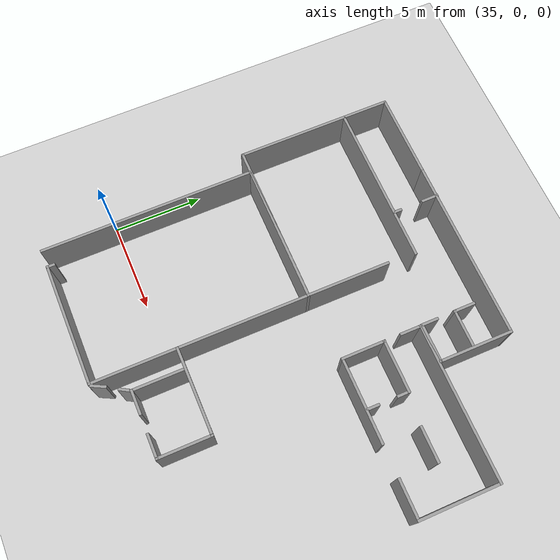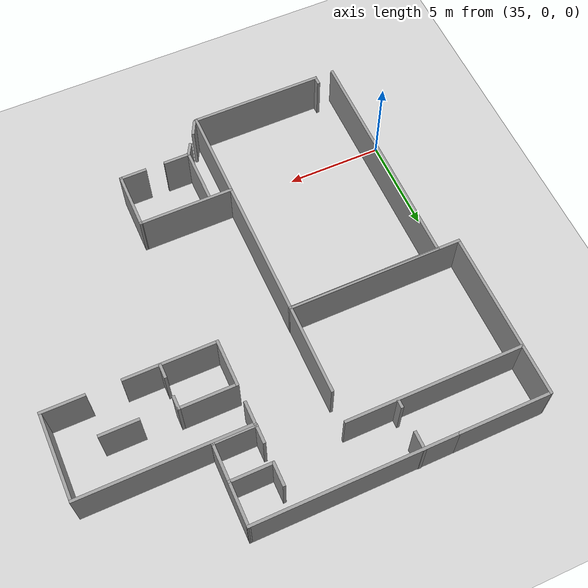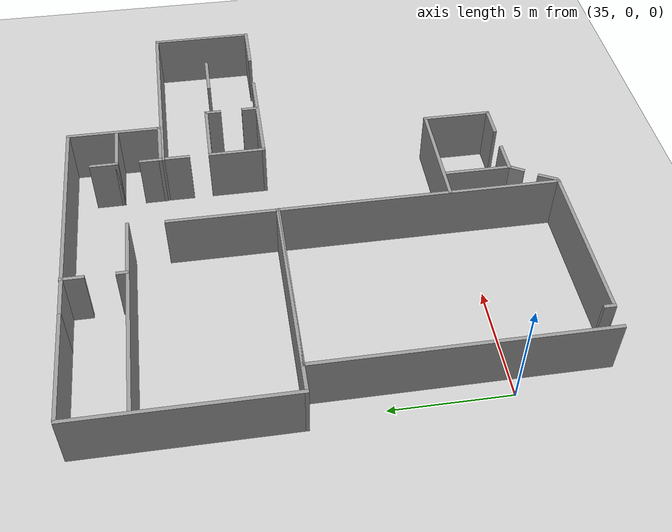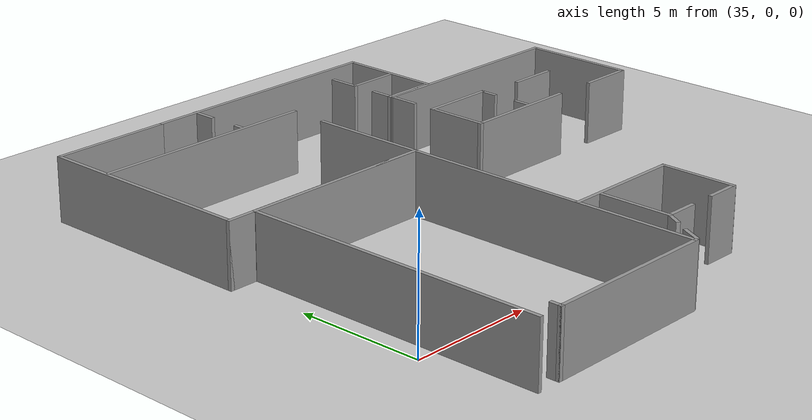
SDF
<sdf version="1.6">
 <world name="default">
  <model name="ground_plane">
   <static>1</static>
   <link name="link">
    <collision name="collision">
     <geometry><plane><normal>0 0 1</normal><size>100 100</size></plane></geometry>
     <surface><friction><ode><mu>100</mu><mu2>50</mu2></ode></friction></surface>
    </collision>
    <visual name="visual">
     <cast_shadows>0</cast_shadows>
     <geometry><plane><normal>0 0 1</normal><size>100 100</size></plane></geometry>
     <material>
      <script><uri>file://media/materials/scripts/gazebo.material</uri><name>Gazebo/Grey</name></script>
     </material>
    </visual>
   </link>
  </model>
  <model name="classrooms_2">
   <pose>39.734 1.98873 0 0 -0 0</pose>
   <link name="Wall_39">
    <collision name="Wall_39_Collision">
     <geometry><box><size>12.192 0.15 2.5</size></box></geometry>
     <pose>0 0 1.25 0 -0 0</pose>
    </collision>
    <visual name="Wall_39_Visual">
     <pose>0 0 1.25 0 -0 0</pose>
     <geometry><box><size>12.192 0.15 2.5</size></box></geometry>
     <material>
      <script><uri>file://media/materials/scripts/gazebo.material</uri><name>Gazebo/Grey</name></script>
      <ambient>1 1 1 1</ambient>
     </material>
     <meta><layer>0</layer></meta>
    </visual>
    <pose>3.92486 -0.000205 0 0 -0 1.5708</pose>
   </link>
   <link name="Wall_40">
    <collision name="Wall_40_Collision">
     <geometry><box><size>7.99972 0.15 2.5</size></box></geometry>
     <pose>0 0 1.25 0 -0 0</pose>
    </collision>
    <visual name="Wall_40_Visual">
     <pose>0 0 1.25 0 -0 0</pose>
     <geometry><box><size>7.99972 0.15 2.5</size></box></geometry>
     <material>
      <script><uri>file://media/materials/scripts/gazebo.material</uri><name>Gazebo/Grey</name></script>
      <ambient>1 1 1 1</ambient>
     </material>
     <meta><layer>0</layer></meta>
    </visual>
    <pose>0 6.02093 0 0 -0 3.14156</pose>
   </link>
   <link name="Wall_41">
    <collision name="Wall_41_Collision">
     <geometry><box><size>12.1923 0.15 2.5</size></box></geometry>
     <pose>0 0 1.25 0 -0 0</pose>
    </collision>
    <visual name="Wall_41_Visual">
     <pose>0 0 1.25 0 -0 0</pose>
     <geometry><box><size>12.1923 0.15 2.5</size></box></geometry>
     <material>
      <script><uri>file://media/materials/scripts/gazebo.material</uri><name>Gazebo/Grey</name></script>
      <ambient>1 1 1 1</ambient>
     </material>
     <meta><layer>0</layer></meta>
    </visual>
    <pose>-3.92486 6.8e-05 0 0 -0 -1.5708</pose>
   </link>
   <link name="Wall_43">
    <collision name="Wall_43_Collision">
     <geometry><box><size>7 0.15 2.5</size></box></geometry>
     <pose>0 0 1.25 0 -0 0</pose>
    </collision>
    <visual name="Wall_43_Visual">
     <pose>0 0 1.25 0 -0 0</pose>
     <geometry><box><size>7 0.15 2.5</size></box></geometry>
     <material>
      <script><uri>file://media/materials/scripts/gazebo.material</uri><name>Gazebo/Grey</name></script>
      <ambient>1 1 1 1</ambient>
     </material>
     <meta><layer>0</layer></meta>
    </visual>
    <pose>0.49986 -6.02121 0 0 -0 3.14159</pose>
   </link>
   <link name="Wall_44">
    <collision name="Wall_44_Collision">
     <geometry><box><size>0.5 0.15 2.5</size></box></geometry>
     <pose>0 0 1.25 0 -0 0</pose>
    </collision>
    <visual name="Wall_44_Visual">
     <pose>0 0 1.25 0 -0 0</pose>
     <geometry><box><size>0.5 0.15 2.5</size></box></geometry>
     <material>
      <script><uri>file://media/materials/scripts/gazebo.material</uri><name>Gazebo/Grey</name></script>
      <ambient>1 1 1 1</ambient>
     </material>
     <meta><layer>0</layer></meta>
    </visual>
    <pose>-2.92514 -5.84621 0 0 -0 1.5708</pose>
   </link>
   <static>1</static>
  </model>
  <model name="214">
   <link name="Wall_121">
    <pose>0 2.34949 0 0 -0 0</pose>
    <visual name="Wall_121_Visual">
     <pose>0 0 1.25 0 -0 0</pose>
     <geometry><box><size>4.953 0.15 2.5</size></box></geometry>
     <material>
      <script><uri>file://media/materials/scripts/gazebo.material</uri><name>Gazebo/Grey</name></script>
      <ambient>1 1 1 1</ambient>
      <shader type="pixel"/>
     </material>
     <meta><layer>0</layer></meta>
    </visual>
    <collision name="Wall_121_Collision">
     <pose>0 0 1.25 0 -0 0</pose>
     <geometry><box><size>4.953 0.15 2.5</size></box></geometry>
     <surface>
      <friction>
       <ode><mu>1</mu><mu2>1</mu2><fdir1>0 0 0</fdir1><slip1>0</slip1><slip2>0</slip2></ode>
       <torsional>
        <coefficient>1</coefficient>
        <patch_radius>0</patch_radius>
        <surface_radius>0</surface_radius>
        <use_patch_radius>1</use_patch_radius>
        <ode><slip>0</slip></ode>
       </torsional>
      </friction>
      <bounce><restitution_coefficient>0</restitution_coefficient><threshold>1e+06</threshold></bounce>
      <contact>
       <collide_without_contact>0</collide_without_contact>
       <collide_without_contact_bitmask>1</collide_without_contact_bitmask>
       <collide_bitmask>1</collide_bitmask>
       <ode>
        <soft_cfm>0</soft_cfm>
        <soft_erp>0.2</soft_erp>
        <kp>1e+13</kp>
        <kd>1</kd>
        <max_vel>0.01</max_vel>
        <min_depth>0</min_depth>
       </ode>
       <bullet>
        <split_impulse>1</split_impulse>
        <split_impulse_penetration_threshold>-0.01</split_impulse_penetration_threshold>
        <soft_cfm>0</soft_cfm>
        <soft_erp>0.2</soft_erp>
        <kp>1e+13</kp>
        <kd>1</kd>
       </bullet>
      </contact>
     </surface>
    </collision>
   </link>
   <link name="Wall_122">
    <pose>2.4015 0.900489 0 0 0 -1.5708</pose>
    <visual name="Wall_122_Visual">
     <pose>0 0 1.25 0 -0 0</pose>
     <geometry><box><size>3.048 0.15 2.5</size></box></geometry>
     <material>
      <script><uri>file://media/materials/scripts/gazebo.material</uri><name>Gazebo/Grey</name></script>
      <ambient>1 1 1 1</ambient>
      <shader type="pixel"/>
     </material>
     <meta><layer>0</layer></meta>
    </visual>
    <collision name="Wall_122_Collision">
     <pose>0 0 1.25 0 -0 0</pose>
     <geometry><box><size>3.048 0.15 2.5</size></box></geometry>
     <surface>
      <friction>
       <ode><mu>1</mu><mu2>1</mu2><fdir1>0 0 0</fdir1><slip1>0</slip1><slip2>0</slip2></ode>
       <torsional>
        <coefficient>1</coefficient>
        <patch_radius>0</patch_radius>
        <surface_radius>0</surface_radius>
        <use_patch_radius>1</use_patch_radius>
        <ode><slip>0</slip></ode>
       </torsional>
      </friction>
      <bounce><restitution_coefficient>0</restitution_coefficient><threshold>1e+06</threshold></bounce>
      <contact>
       <collide_without_contact>0</collide_without_contact>
       <collide_without_contact_bitmask>1</collide_without_contact_bitmask>
       <collide_bitmask>1</collide_bitmask>
       <ode>
        <soft_cfm>0</soft_cfm>
        <soft_erp>0.2</soft_erp>
        <kp>1e+13</kp>
        <kd>1</kd>
        <max_vel>0.01</max_vel>
        <min_depth>0</min_depth>
       </ode>
       <bullet>
        <split_impulse>1</split_impulse>
        <split_impulse_penetration_threshold>-0.01</split_impulse_penetration_threshold>
        <soft_cfm>0</soft_cfm>
        <soft_erp>0.2</soft_erp>
        <kp>1e+13</kp>
        <kd>1</kd>
       </bullet>
      </contact>
     </surface>
    </collision>
   </link>
   <link name="Wall_123">
    <pose>1.75797 -0.548528 0 0 0 -3.14158</pose>
    <inertial>
     <inertia><ixx>0</ixx><ixy>0</ixy><ixz>0</ixz><iyy>0</iyy><iyz>0</iyz><izz>0</izz></inertia>
     <mass>0</mass>
    </inertial>
    <visual name="Wall_123_Visual">
     <pose>0 0 1.25 0 -0 0</pose>
     <geometry><box><size>1.41659 0.15 2.5</size></box></geometry>
     <material>
      <script><uri>file://media/materials/scripts/gazebo.material</uri><name>Gazebo/Grey</name></script>
      <ambient>1 1 1 1</ambient>
      <shader type="pixel"/>
     </material>
     <meta><layer>0</layer></meta>
    </visual>
    <collision name="Wall_123_Collision">
     <pose>0 0 1.25 0 -0 0</pose>
     <geometry><box><size>1.41659 0.15 2.5</size></box></geometry>
     <surface>
      <friction>
       <ode><mu>1</mu><mu2>1</mu2><fdir1>0 0 0</fdir1><slip1>0</slip1><slip2>0</slip2></ode>
       <torsional>
        <coefficient>1</coefficient>
        <patch_radius>0</patch_radius>
        <surface_radius>0</surface_radius>
        <use_patch_radius>1</use_patch_radius>
        <ode><slip>0</slip></ode>
       </torsional>
      </friction>
      <bounce><restitution_coefficient>0</restitution_coefficient><threshold>1e+06</threshold></bounce>
      <contact>
       <collide_without_contact>0</collide_without_contact>
       <collide_without_contact_bitmask>1</collide_without_contact_bitmask>
       <collide_bitmask>1</collide_bitmask>
       <ode>
        <soft_cfm>0</soft_cfm>
        <soft_erp>0.2</soft_erp>
        <kp>1e+13</kp>
        <kd>1</kd>
        <max_vel>0.01</max_vel>
        <min_depth>0</min_depth>
       </ode>
       <bullet>
        <split_impulse>1</split_impulse>
        <split_impulse_penetration_threshold>-0.01</split_impulse_penetration_threshold>
        <soft_cfm>0</soft_cfm>
        <soft_erp>0.2</soft_erp>
        <kp>1e+13</kp>
        <kd>1</kd>
       </bullet>
      </contact>
     </surface>
    </collision>
   </link>
   <link name="Wall_123_clone">
    <pose>-0.622276 -0.540195 0 0 0 -3.14158</pose>
    <inertial>
     <inertia><ixx>0</ixx><ixy>0</ixy><ixz>0</ixz><iyy>0</iyy><iyz>0</iyz><izz>0</izz></inertia>
     <mass>0</mass>
    </inertial>
    <visual name="Wall_123_Visual">
     <pose>0 0 1.25 0 -0 0</pose>
     <geometry><box><size>1.41659 0.15 2.5</size></box></geometry>
     <material>
      <script><uri>file://media/materials/scripts/gazebo.material</uri><name>Gazebo/Grey</name></script>
      <ambient>1 1 1 1</ambient>
      <shader type="pixel"/>
     </material>
     <meta><layer>0</layer></meta>
    </visual>
    <collision name="Wall_123_Collision">
     <pose>0 0 1.25 0 -0 0</pose>
     <geometry><box><size>1.41659 0.15 2.5</size></box></geometry>
     <surface>
      <friction>
       <ode><mu>1</mu><mu2>1</mu2><fdir1>0 0 0</fdir1><slip1>0</slip1><slip2>0</slip2></ode>
       <torsional>
        <coefficient>1</coefficient>
        <patch_radius>0</patch_radius>
        <surface_radius>0</surface_radius>
        <use_patch_radius>1</use_patch_radius>
        <ode><slip>0</slip></ode>
       </torsional>
      </friction>
      <bounce><restitution_coefficient>0</restitution_coefficient><threshold>1e+06</threshold></bounce>
      <contact>
       <collide_without_contact>0</collide_without_contact>
       <collide_without_contact_bitmask>1</collide_without_contact_bitmask>
       <collide_bitmask>1</collide_bitmask>
       <ode>
        <soft_cfm>0</soft_cfm>
        <soft_erp>0.2</soft_erp>
        <kp>1e+13</kp>
        <kd>1</kd>
        <max_vel>0.01</max_vel>
        <min_depth>0</min_depth>
       </ode>
       <bullet>
        <split_impulse>1</split_impulse>
        <split_impulse_penetration_threshold>-0.01</split_impulse_penetration_threshold>
        <soft_cfm>0</soft_cfm>
        <soft_erp>0.2</soft_erp>
        <kp>1e+13</kp>
        <kd>1</kd>
       </bullet>
      </contact>
     </surface>
    </collision>
   </link>
   <link name="Wall_128">
    <pose>-1.40869 -0.808383 0 0 0 -2.0944</pose>
    <visual name="Wall_128_Visual">
     <pose>0 0 1.25 0 -0 0</pose>
     <geometry><box><size>0.75 0.15 2.5</size></box></geometry>
     <material>
      <script><uri>file://media/materials/scripts/gazebo.material</uri><name>Gazebo/Grey</name></script>
      <ambient>1 1 1 1</ambient>
      <shader type="pixel"/>
     </material>
     <meta><layer>0</layer></meta>
    </visual>
    <collision name="Wall_128_Collision">
     <pose>0 0 1.25 0 -0 0</pose>
     <geometry><box><size>0.75 0.15 2.5</size></box></geometry>
     <surface>
      <friction>
       <ode><mu>1</mu><mu2>1</mu2><fdir1>0 0 0</fdir1><slip1>0</slip1><slip2>0</slip2></ode>
       <torsional>
        <coefficient>1</coefficient>
        <patch_radius>0</patch_radius>
        <surface_radius>0</surface_radius>
        <use_patch_radius>1</use_patch_radius>
        <ode><slip>0</slip></ode>
       </torsional>
      </friction>
      <bounce><restitution_coefficient>0</restitution_coefficient><threshold>1e+06</threshold></bounce>
      <contact>
       <collide_without_contact>0</collide_without_contact>
       <collide_without_contact_bitmask>1</collide_without_contact_bitmask>
       <collide_bitmask>1</collide_bitmask>
       <ode>
        <soft_cfm>0</soft_cfm>
        <soft_erp>0.2</soft_erp>
        <kp>1e+13</kp>
        <kd>1</kd>
        <max_vel>0.01</max_vel>
        <min_depth>0</min_depth>
       </ode>
       <bullet>
        <split_impulse>1</split_impulse>
        <split_impulse_penetration_threshold>-0.01</split_impulse_penetration_threshold>
        <soft_cfm>0</soft_cfm>
        <soft_erp>0.2</soft_erp>
        <kp>1e+13</kp>
        <kd>1</kd>
       </bullet>
      </contact>
     </surface>
    </collision>
   </link>
   <link name="Wall_130">
    <pose>-2.12119 -2.00558 0 0 0 -2.04321</pose>
    <visual name="Wall_130_Visual">
     <pose>0 0 1.25 0 -0 0</pose>
     <geometry><box><size>0.864228 0.15 2.5</size></box></geometry>
     <material>
      <script><uri>file://media/materials/scripts/gazebo.material</uri><name>Gazebo/Grey</name></script>
      <ambient>1 1 1 1</ambient>
      <shader type="pixel"/>
     </material>
     <meta><layer>0</layer></meta>
    </visual>
    <collision name="Wall_130_Collision">
     <pose>0 0 1.25 0 -0 0</pose>
     <geometry><box><size>0.864228 0.15 2.5</size></box></geometry>
     <surface>
      <friction>
       <ode><mu>1</mu><mu2>1</mu2><fdir1>0 0 0</fdir1><slip1>0</slip1><slip2>0</slip2></ode>
       <torsional>
        <coefficient>1</coefficient>
        <patch_radius>0</patch_radius>
        <surface_radius>0</surface_radius>
        <use_patch_radius>1</use_patch_radius>
        <ode><slip>0</slip></ode>
       </torsional>
      </friction>
      <bounce><restitution_coefficient>0</restitution_coefficient><threshold>1e+06</threshold></bounce>
      <contact>
       <collide_without_contact>0</collide_without_contact>
       <collide_without_contact_bitmask>1</collide_without_contact_bitmask>
       <collide_bitmask>1</collide_bitmask>
       <ode>
        <soft_cfm>0</soft_cfm>
        <soft_erp>0.2</soft_erp>
        <kp>1e+13</kp>
        <kd>1</kd>
        <max_vel>0.01</max_vel>
        <min_depth>0</min_depth>
       </ode>
       <bullet>
        <split_impulse>1</split_impulse>
        <split_impulse_penetration_threshold>-0.01</split_impulse_penetration_threshold>
        <soft_cfm>0</soft_cfm>
        <soft_erp>0.2</soft_erp>
        <kp>1e+13</kp>
        <kd>1</kd>
       </bullet>
      </contact>
     </surface>
    </collision>
   </link>
   <link name="Wall_132">
    <pose>-1.25869 0.876424 0 0 -0 1.5708</pose>
    <visual name="Wall_132_Visual">
     <pose>0 0 1.25 0 -0 0</pose>
     <geometry><box><size>3 0.15 2.5</size></box></geometry>
     <material>
      <script><uri>file://media/materials/scripts/gazebo.material</uri><name>Gazebo/Grey</name></script>
      <ambient>1 1 1 1</ambient>
      <shader type="pixel"/>
     </material>
     <meta><layer>0</layer></meta>
    </visual>
    <collision name="Wall_132_Collision">
     <pose>0 0 1.25 0 -0 0</pose>
     <geometry><box><size>3 0.15 2.5</size></box></geometry>
     <surface>
      <friction>
       <ode><mu>1</mu><mu2>1</mu2><fdir1>0 0 0</fdir1><slip1>0</slip1><slip2>0</slip2></ode>
       <torsional>
        <coefficient>1</coefficient>
        <patch_radius>0</patch_radius>
        <surface_radius>0</surface_radius>
        <use_patch_radius>1</use_patch_radius>
        <ode><slip>0</slip></ode>
       </torsional>
      </friction>
      <bounce><restitution_coefficient>0</restitution_coefficient><threshold>1e+06</threshold></bounce>
      <contact>
       <collide_without_contact>0</collide_without_contact>
       <collide_without_contact_bitmask>1</collide_without_contact_bitmask>
       <collide_bitmask>1</collide_bitmask>
       <ode>
        <soft_cfm>0</soft_cfm>
        <soft_erp>0.2</soft_erp>
        <kp>1e+13</kp>
        <kd>1</kd>
        <max_vel>0.01</max_vel>
        <min_depth>0</min_depth>
       </ode>
       <bullet>
        <split_impulse>1</split_impulse>
        <split_impulse_penetration_threshold>-0.01</split_impulse_penetration_threshold>
        <soft_cfm>0</soft_cfm>
        <soft_erp>0.2</soft_erp>
        <kp>1e+13</kp>
        <kd>1</kd>
       </bullet>
      </contact>
     </surface>
    </collision>
   </link>
   <static>1</static>
   <pose>46.0733 -1.64391 0 0 -0 0</pose>
  </model>
  <model name="200B">
   <pose>42.0991 12.4122 0 0 -0 0</pose>
   <link name="Wall_0">
    <collision name="Wall_0_Collision">
     <geometry><box><size>8.9 0.15 2.5</size></box></geometry>
     <pose>0 0 1.25 0 -0 0</pose>
    </collision>
    <visual name="Wall_0_Visual">
     <pose>0 0 1.25 0 -0 0</pose>
     <geometry><box><size>8.9 0.15 2.5</size></box></geometry>
     <material>
      <script><uri>file://media/materials/scripts/gazebo.material</uri><name>Gazebo/Grey</name></script>
      <ambient>1 1 1 1</ambient>
     </material>
     <meta><layer>0</layer></meta>
    </visual>
    <pose>-7.44106 -0.018099 0 0 -0 1.5708</pose>
   </link>
   <link name="Wall_11">
    <collision name="Wall_11_Collision">
     <geometry><box><size>4.75 0.15 2.5</size></box></geometry>
     <pose>0 0 1.25 0 -0 0</pose>
    </collision>
    <visual name="Wall_11_Visual">
     <pose>0 0 1.25 0 -0 0</pose>
     <geometry><box><size>4.75 0.15 2.5</size></box></geometry>
     <material>
      <script><uri>file://media/materials/scripts/gazebo.material</uri><name>Gazebo/Grey</name></script>
      <ambient>1 1 1 1</ambient>
     </material>
     <meta><layer>0</layer></meta>
    </visual>
    <pose>-5.05906 4.3699 0 0 -0 3.14159</pose>
   </link>
   <link name="Wall_13">
    <collision name="Wall_13_Collision">
     <geometry><box><size>2.25 0.15 2.5</size></box></geometry>
     <pose>0 0 1.25 0 -0 0</pose>
    </collision>
    <visual name="Wall_13_Visual">
     <pose>0 0 1.25 0 -0 0</pose>
     <geometry><box><size>2.25 0.15 2.5</size></box></geometry>
     <material>
      <script><uri>file://media/materials/scripts/gazebo.material</uri><name>Gazebo/Grey</name></script>
      <ambient>1 1 1 1</ambient>
     </material>
     <meta><layer>0</layer></meta>
    </visual>
    <pose>6.3844 2.22395 0 0 -0 3.14159</pose>
   </link>
   <link name="Wall_15">
    <collision name="Wall_15_Collision">
     <geometry><box><size>1.25 0.15 2.5</size></box></geometry>
     <pose>0 0 1.25 0 -0 0</pose>
    </collision>
    <visual name="Wall_15_Visual">
     <pose>0 0 1.25 0 -0 0</pose>
     <geometry><box><size>1.25 0.15 2.5</size></box></geometry>
     <material>
      <script><uri>file://media/materials/scripts/gazebo.material</uri><name>Gazebo/Grey</name></script>
      <ambient>1 1 1 1</ambient>
     </material>
     <meta><layer>0</layer></meta>
    </visual>
    <pose>5.3344 2.77395 0 0 -0 1.5708</pose>
   </link>
   <link name="Wall_18">
    <collision name="Wall_18_Collision">
     <geometry><box><size>2.243 0.15 2.5</size></box></geometry>
     <pose>0 0 1.25 0 -0 0</pose>
    </collision>
    <visual name="Wall_18_Visual">
     <pose>0 0 1.25 0 -0 0</pose>
     <geometry><box><size>2.243 0.15 2.5</size></box></geometry>
     <material>
      <script><uri>file://media/materials/scripts/gazebo.material</uri><name>Gazebo/Grey</name></script>
      <ambient>1 1 1 1</ambient>
     </material>
     <meta><layer>0</layer></meta>
    </visual>
    <pose>6.38744 0.328901 0 0 -0 0</pose>
   </link>
   <link name="Wall_22">
    <collision name="Wall_22_Collision">
     <geometry><box><size>1 0.15 2.5</size></box></geometry>
     <pose>0 0 1.25 0 -0 0</pose>
    </collision>
    <visual name="Wall_22_Visual">
     <pose>0 0 1.25 0 -0 0</pose>
     <geometry><box><size>1 0.15 2.5</size></box></geometry>
     <material>
      <script><uri>file://media/materials/scripts/gazebo.material</uri><name>Gazebo/Grey</name></script>
      <ambient>1 1 1 1</ambient>
     </material>
     <meta><layer>0</layer></meta>
    </visual>
    <pose>5.34094 0.753901 0 0 -0 1.5708</pose>
   </link>
   <link name="Wall_26">
    <collision name="Wall_26_Collision">
     <geometry><box><size>9.144 0.15 2.5</size></box></geometry>
     <pose>0 0 1.25 0 -0 0</pose>
    </collision>
    <visual name="Wall_26_Visual">
     <pose>0 0 1.25 0 -0 0</pose>
     <geometry><box><size>9.144 0.15 2.5</size></box></geometry>
     <material>
      <script><uri>file://media/materials/scripts/gazebo.material</uri><name>Gazebo/Grey</name></script>
      <ambient>1 1 1 1</ambient>
     </material>
     <meta><layer>0</layer></meta>
    </visual>
    <pose>-2.87406 1.8079 0 0 -0 0</pose>
   </link>
   <link name="Wall_32">
    <collision name="Wall_32_Collision">
     <geometry><box><size>9.144 0.15 2.5</size></box></geometry>
     <pose>0 0 1.25 0 -0 0</pose>
    </collision>
    <visual name="Wall_32_Visual">
     <pose>0 0 1.25 0 -0 0</pose>
     <geometry><box><size>9.144 0.15 2.5</size></box></geometry>
     <material>
      <script><uri>file://media/materials/scripts/gazebo.material</uri><name>Gazebo/Grey</name></script>
      <ambient>1 1 1 1</ambient>
     </material>
     <meta><layer>0</layer></meta>
    </visual>
    <pose>-2.94406 -4.3931 0 0 -0 0</pose>
   </link>
   <link name="Wall_33">
    <collision name="Wall_33_Collision">
     <geometry><box><size>4.75 0.15 2.5</size></box></geometry>
     <pose>0 0 1.25 0 -0 0</pose>
    </collision>
    <visual name="Wall_33_Visual">
     <pose>0 0 1.25 0 -0 0</pose>
     <geometry><box><size>4.75 0.15 2.5</size></box></geometry>
     <material>
      <script><uri>file://media/materials/scripts/gazebo.material</uri><name>Gazebo/Grey</name></script>
      <ambient>1 1 1 1</ambient>
     </material>
     <meta><layer>0</layer></meta>
    </visual>
    <pose>1.55294 -2.0931 0 0 -0 1.5708</pose>
   </link>
   <link name="Wall_39">
    <collision name="Wall_39_Collision">
     <geometry><box><size>1 0.15 2.5</size></box></geometry>
     <pose>0 0 1.25 0 -0 0</pose>
    </collision>
    <visual name="Wall_39_Visual">
     <pose>0 0 1.25 0 -0 0</pose>
     <geometry><box><size>1 0.15 2.5</size></box></geometry>
     <material>
      <script><uri>file://media/materials/scripts/gazebo.material</uri><name>Gazebo/Grey</name></script>
      <ambient>1 1 1 1</ambient>
     </material>
     <meta><layer>0</layer></meta>
    </visual>
    <pose>-0.97498 3.9681 0 0 -0 -1.5708</pose>
   </link>
   <link name="Wall_41">
    <collision name="Wall_41_Collision">
     <geometry><box><size>0.5 0.15 2.5</size></box></geometry>
     <pose>0 0 1.25 0 -0 0</pose>
    </collision>
    <visual name="Wall_41_Visual">
     <pose>0 0 1.25 0 -0 0</pose>
     <geometry><box><size>0.5 0.15 2.5</size></box></geometry>
     <material>
      <script><uri>file://media/materials/scripts/gazebo.material</uri><name>Gazebo/Grey</name></script>
      <ambient>1 1 1 1</ambient>
     </material>
     <meta><layer>0</layer></meta>
    </visual>
    <pose>-0.97498 2.0181 0 0 -0 -1.5708</pose>
   </link>
   <link name="Wall_6">
    <collision name="Wall_6_Collision">
     <geometry><box><size>4.191 0.15 2.5</size></box></geometry>
     <pose>0 0 1.25 0 -0 0</pose>
    </collision>
    <visual name="Wall_6_Visual">
     <pose>0 0 1.25 0 -0 0</pose>
     <geometry><box><size>4.191 0.15 2.5</size></box></geometry>
     <material>
      <script><uri>file://media/materials/scripts/gazebo.material</uri><name>Gazebo/Grey</name></script>
      <ambient>1 1 1 1</ambient>
     </material>
     <meta><layer>0</layer></meta>
    </visual>
    <pose>7.43744 2.3494 0 0 -0 1.56906</pose>
   </link>
   <link name="Wall_9">
    <collision name="Wall_9_Collision">
     <geometry><box><size>10.25 0.15 2.5</size></box></geometry>
     <pose>0 0 1.25 0 -0 0</pose>
    </collision>
    <visual name="Wall_9_Visual">
     <pose>0 0 1.25 0 -0 0</pose>
     <geometry><box><size>10.25 0.15 2.5</size></box></geometry>
     <material>
      <script><uri>file://media/materials/scripts/gazebo.material</uri><name>Gazebo/Grey</name></script>
      <ambient>1 1 1 1</ambient>
     </material>
     <meta><layer>0</layer></meta>
    </visual>
    <pose>2.39094 4.3699 0 0 -0 3.14159</pose>
   </link>
   <static>1</static>
  </model>
  <model name="215_0">
   <pose>51.765 10.4315 0 0 -0 0</pose>
   <link name="Wall_43">
    <collision name="Wall_43_Collision">
     <geometry><box><size>8.763 0.15 2.5</size></box></geometry>
     <pose>0 0 1.25 0 -0 0</pose>
    </collision>
    <visual name="Wall_43_Visual">
     <pose>0 0 1.25 0 -0 0</pose>
     <geometry><box><size>8.763 0.15 2.5</size></box></geometry>
     <material>
      <script><uri>file://media/materials/scripts/gazebo.material</uri><name>Gazebo/Grey</name></script>
      <ambient>1 1 1 1</ambient>
     </material>
     <meta><layer>0</layer></meta>
    </visual>
    <pose>-0.000181 2.21122 0 0 -0 0</pose>
   </link>
   <link name="Wall_44">
    <collision name="Wall_44_Collision">
     <geometry><box><size>4.572 0.15 2.5</size></box></geometry>
     <pose>0 0 1.25 0 -0 0</pose>
    </collision>
    <visual name="Wall_44_Visual">
     <pose>0 0 1.25 0 -0 0</pose>
     <geometry><box><size>4.572 0.15 2.5</size></box></geometry>
     <material>
      <script><uri>file://media/materials/scripts/gazebo.material</uri><name>Gazebo/Grey</name></script>
      <ambient>1 1 1 1</ambient>
     </material>
     <meta><layer>0</layer></meta>
    </visual>
    <pose>4.3065 0 0 0 -0 -1.57072</pose>
   </link>
   <link name="Wall_48">
    <collision name="Wall_48_Collision">
     <geometry><box><size>2.25 0.15 2.5</size></box></geometry>
     <pose>0 0 1.25 0 -0 0</pose>
    </collision>
    <visual name="Wall_48_Visual">
     <pose>0 0 1.25 0 -0 0</pose>
     <geometry><box><size>2.25 0.15 2.5</size></box></geometry>
     <material>
      <script><uri>file://media/materials/scripts/gazebo.material</uri><name>Gazebo/Grey</name></script>
      <ambient>1 1 1 1</ambient>
     </material>
     <meta><layer>0</layer></meta>
    </visual>
    <pose>3.25668 -2.21122 0 0 -0 3.14159</pose>
   </link>
   <link name="Wall_50">
    <collision name="Wall_50_Collision">
     <geometry><box><size>4.813 0.15 2.5</size></box></geometry>
     <pose>0 0 1.25 0 -0 0</pose>
    </collision>
    <visual name="Wall_50_Visual">
     <pose>0 0 1.25 0 -0 0</pose>
     <geometry><box><size>4.813 0.15 2.5</size></box></geometry>
     <material>
      <script><uri>file://media/materials/scripts/gazebo.material</uri><name>Gazebo/Grey</name></script>
      <ambient>1 1 1 1</ambient>
     </material>
     <meta><layer>0</layer></meta>
    </visual>
    <pose>-1.97482 -2.21122 0 0 -0 3.14159</pose>
   </link>
   <link name="Wall_52">
    <collision name="Wall_52_Collision">
     <geometry><box><size>2.5 0.15 2.5</size></box></geometry>
     <pose>0 0 1.25 0 -0 0</pose>
    </collision>
    <visual name="Wall_52_Visual">
     <pose>0 0 1.25 0 -0 0</pose>
     <geometry><box><size>2.5 0.15 2.5</size></box></geometry>
     <material>
      <script><uri>file://media/materials/scripts/gazebo.material</uri><name>Gazebo/Grey</name></script>
      <ambient>1 1 1 1</ambient>
     </material>
     <meta><layer>0</layer></meta>
    </visual>
    <pose>-4.30632 -1.03622 0 0 -0 1.5708</pose>
   </link>
   <link name="Wall_53">
    <collision name="Wall_53_Collision">
     <geometry><box><size>3 0.15 2.5</size></box></geometry>
     <pose>0 0 1.25 0 -0 0</pose>
    </collision>
    <visual name="Wall_53_Visual">
     <pose>0 0 1.25 0 -0 0</pose>
     <geometry><box><size>3 0.15 2.5</size></box></geometry>
     <material>
      <script><uri>file://media/materials/scripts/gazebo.material</uri><name>Gazebo/Grey</name></script>
      <ambient>1 1 1 1</ambient>
     </material>
     <meta><layer>0</layer></meta>
    </visual>
    <pose>-2.88132 0.138785 0 0 -0 0</pose>
   </link>
   <link name="Wall_54">
    <collision name="Wall_54_Collision">
     <geometry><box><size>0.75 0.15 2.5</size></box></geometry>
     <pose>0 0 1.25 0 -0 0</pose>
    </collision>
    <visual name="Wall_54_Visual">
     <pose>0 0 1.25 0 -0 0</pose>
     <geometry><box><size>0.75 0.15 2.5</size></box></geometry>
     <material>
      <script><uri>file://media/materials/scripts/gazebo.material</uri><name>Gazebo/Grey</name></script>
      <ambient>1 1 1 1</ambient>
     </material>
     <meta><layer>0</layer></meta>
    </visual>
    <pose>-1.45632 -0.161215 0 0 -0 -1.5708</pose>
   </link>
   <link name="Wall_56">
    <collision name="Wall_56_Collision">
     <geometry><box><size>0.75 0.15 2.5</size></box></geometry>
     <pose>0 0 1.25 0 -0 0</pose>
    </collision>
    <visual name="Wall_56_Visual">
     <pose>0 0 1.25 0 -0 0</pose>
     <geometry><box><size>0.75 0.15 2.5</size></box></geometry>
     <material>
      <script><uri>file://media/materials/scripts/gazebo.material</uri><name>Gazebo/Grey</name></script>
      <ambient>1 1 1 1</ambient>
     </material>
     <meta><layer>0</layer></meta>
    </visual>
    <pose>-1.45632 -1.86122 0 0 -0 -1.5708</pose>
   </link>
   <link name="Wall_58">
    <collision name="Wall_58_Collision">
     <geometry><box><size>1.25 0.15 2.5</size></box></geometry>
     <pose>0 0 1.25 0 -0 0</pose>
    </collision>
    <visual name="Wall_58_Visual">
     <pose>0 0 1.25 0 -0 0</pose>
     <geometry><box><size>1.25 0.15 2.5</size></box></geometry>
     <material>
      <script><uri>file://media/materials/scripts/gazebo.material</uri><name>Gazebo/Grey</name></script>
      <ambient>1 1 1 1</ambient>
     </material>
     <meta><layer>0</layer></meta>
    </visual>
    <pose>-4.30668 1.66122 0 0 -0 -1.5708</pose>
   </link>
   <link name="Wall_60">
    <collision name="Wall_60_Collision">
     <geometry><box><size>2 0.15 2.5</size></box></geometry>
     <pose>0 0 1.25 0 -0 0</pose>
    </collision>
    <visual name="Wall_60_Visual">
     <pose>0 0 1.25 0 -0 0</pose>
     <geometry><box><size>2 0.15 2.5</size></box></geometry>
     <material>
      <script><uri>file://media/materials/scripts/gazebo.material</uri><name>Gazebo/Grey</name></script>
      <ambient>1 1 1 1</ambient>
     </material>
     <meta><layer>0</layer></meta>
    </visual>
    <pose>1.29658 -0.101829 0 0 -0 0</pose>
   </link>
   <static>1</static>
  </model>
 </world>
</sdf>
